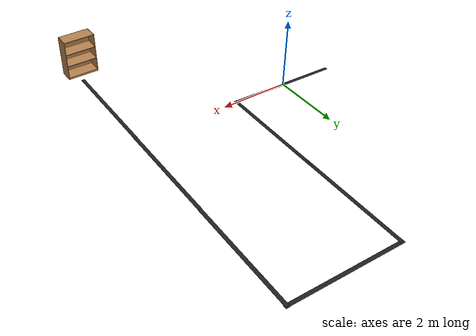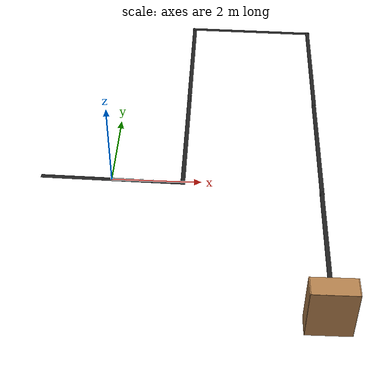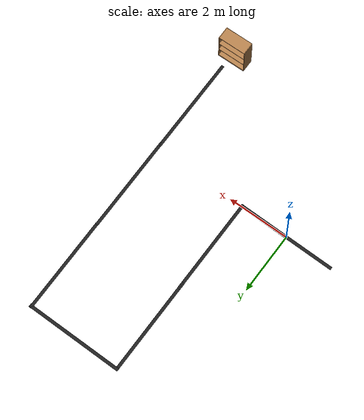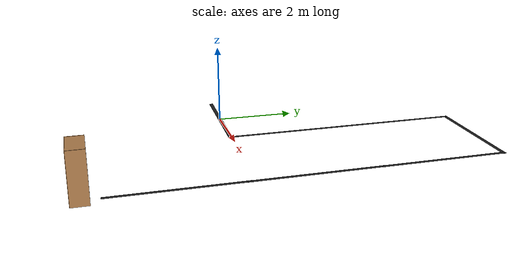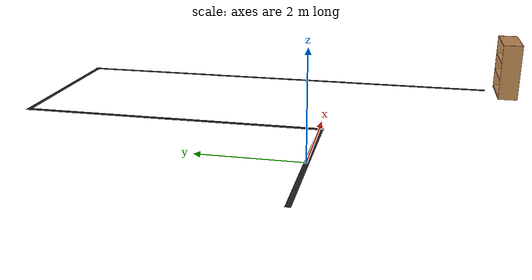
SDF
<sdf version="1.6">
 <world name="default">
  <light name="sun" type="directional">
   <pose>0 0 10 0 -0 0</pose>
   <diffuse>0.8 0.8 0.8 1</diffuse>
   <specular>0.2 0.2 0.2 1</specular>
   <attenuation>
    <range>1000</range>
    <constant>0.9</constant>
    <linear>0.01</linear>
    <quadratic>0.001</quadratic>
   </attenuation>
   <direction>-0.5 0.1 -0.9</direction>
  </light>
  <gravity>0 0 -9.8</gravity>
  <magnetic_field>6e-06 2.3e-05 -4.2e-05</magnetic_field>
  <atmosphere type="adiabatic"/>
  <physics name="default_physics" default="0" type="ode">
   <max_step_size>0.001</max_step_size>
   <real_time_factor>1</real_time_factor>
   <real_time_update_rate>1000</real_time_update_rate>
  </physics>
  <scene><ambient>0.4 0.4 0.4 1</ambient><background>0.7 0.7 0.7 1</background><shadows>1</shadows></scene>
  <spherical_coordinates>
   <surface_model>EARTH_WGS84</surface_model>
   <latitude_deg>0</latitude_deg>
   <longitude_deg>0</longitude_deg>
   <elevation>0</elevation>
   <heading_deg>0</heading_deg>
  </spherical_coordinates>
  <model name="black line">
   <static>1</static>
   <link name="link_ground">
    <collision name="collision">
     <geometry><plane><normal>0 0 1</normal><size>0.1 3.2</size></plane></geometry>
     <surface><friction><ode><mu>100</mu><mu2>50</mu2></ode></friction></surface>
    </collision>
    <visual name="visual_ground">
     <cast_shadows>0</cast_shadows>
     <geometry><plane><normal>0 0 1</normal><size>0.1 3.2</size></plane></geometry>
     <material>
      <script><uri>file://media/materials/scripts/gazebo.material</uri><name>Gazebo/Black</name></script>
     </material>
    </visual>
   </link>
   <pose>0 0 0 0 -0 1.55</pose>
  </model>
  <model name="black line_0">
   <static>1</static>
   <link name="link_ground">
    <collision name="collision">
     <geometry><plane><normal>0 0 1</normal><size>0.1 3.2</size></plane></geometry>
     <surface><friction><ode><mu>100</mu><mu2>50</mu2></ode></friction></surface>
    </collision>
    <visual name="visual_ground">
     <cast_shadows>0</cast_shadows>
     <geometry><plane><normal>0 0 1</normal><size>0.1 3.2</size></plane></geometry>
     <material>
      <script><uri>file://media/materials/scripts/gazebo.material</uri><name>Gazebo/Black</name></script>
     </material>
    </visual>
   </link>
   <pose>1.59123 1.51159 0 0 -0 0</pose>
  </model>
  <model name="black line_1">
   <static>1</static>
   <link name="link_ground">
    <collision name="collision">
     <geometry><plane><normal>0 0 1</normal><size>0.1 3.2</size></plane></geometry>
     <surface><friction><ode><mu>100</mu><mu2>50</mu2></ode></friction></surface>
    </collision>
    <visual name="visual_ground">
     <cast_shadows>0</cast_shadows>
     <geometry><plane><normal>0 0 1</normal><size>0.1 3.2</size></plane></geometry>
     <material>
      <script><uri>file://media/materials/scripts/gazebo.material</uri><name>Gazebo/Black</name></script>
     </material>
    </visual>
   </link>
   <pose>1.58806 4.47746 0 0 -0 0</pose>
  </model>
  <model name="black line_2">
   <static>1</static>
   <link name="link_ground">
    <collision name="collision">
     <geometry><plane><normal>0 0 1</normal><size>0.1 3.2</size></plane></geometry>
     <surface><friction><ode><mu>100</mu><mu2>50</mu2></ode></friction></surface>
    </collision>
    <visual name="visual_ground">
     <cast_shadows>0</cast_shadows>
     <geometry><plane><normal>0 0 1</normal><size>0.1 3.2</size></plane></geometry>
     <material>
      <script><uri>file://media/materials/scripts/gazebo.material</uri><name>Gazebo/Black</name></script>
     </material>
    </visual>
   </link>
   <pose>3.135 6.04301 0 0 -0 1.55</pose>
  </model>
  <model name="black line_3">
   <static>1</static>
   <link name="link_ground">
    <collision name="collision">
     <geometry><plane><normal>0 0 1</normal><size>0.1 3.2</size></plane></geometry>
     <surface><friction><ode><mu>100</mu><mu2>50</mu2></ode></friction></surface>
    </collision>
    <visual name="visual_ground">
     <cast_shadows>0</cast_shadows>
     <geometry><plane><normal>0 0 1</normal><size>0.1 3.2</size></plane></geometry>
     <material>
      <script><uri>file://media/materials/scripts/gazebo.material</uri><name>Gazebo/Black</name></script>
     </material>
    </visual>
   </link>
   <pose>4.67279 4.469 0 0 -0 0</pose>
  </model>
  <model name="black line_4">
   <static>1</static>
   <link name="link_ground">
    <collision name="collision">
     <geometry><plane><normal>0 0 1</normal><size>0.1 3.2</size></plane></geometry>
     <surface><friction><ode><mu>100</mu><mu2>50</mu2></ode></friction></surface>
    </collision>
    <visual name="visual_ground">
     <cast_shadows>0</cast_shadows>
     <geometry><plane><normal>0 0 1</normal><size>0.1 3.2</size></plane></geometry>
     <material>
      <script><uri>file://media/materials/scripts/gazebo.material</uri><name>Gazebo/Black</name></script>
     </material>
    </visual>
   </link>
   <pose>4.66676 1.3253 0 0 -0 0</pose>
  </model>
  <model name="black line_5">
   <static>1</static>
   <link name="link_ground">
    <collision name="collision">
     <geometry><plane><normal>0 0 1</normal><size>0.1 3.2</size></plane></geometry>
     <surface><friction><ode><mu>100</mu><mu2>50</mu2></ode></friction></surface>
    </collision>
    <visual name="visual_ground">
     <cast_shadows>0</cast_shadows>
     <geometry><plane><normal>0 0 1</normal><size>0.1 3.2</size></plane></geometry>
     <material>
      <script><uri>file://media/materials/scripts/gazebo.material</uri><name>Gazebo/Black</name></script>
     </material>
    </visual>
   </link>
   <pose>4.66081 -1.74669 0 0 -0 0</pose>
  </model>
  <model name="bookshelf">
   <static>1</static>
   <link name="link">
    <inertial><mass>1</mass></inertial>
    <collision name="back">
     <pose>0 0.005 0.6 0 -0 0</pose>
     <geometry><box><size>0.9 0.01 1.2</size></box></geometry>
    </collision>
    <visual name="visual1">
     <pose>0 0.005 0.6 0 -0 0</pose>
     <geometry><box><size>0.9 0.01 1.2</size></box></geometry>
     <material>
      <script><uri>file://media/materials/scripts/gazebo.material</uri><name>Gazebo/Wood</name></script>
     </material>
    </visual>
    <collision name="left_side">
     <pose>0.45 -0.195 0.6 0 -0 0</pose>
     <geometry><box><size>0.02 0.4 1.2</size></box></geometry>
    </collision>
    <visual name="visual2">
     <pose>0.45 -0.195 0.6 0 -0 0</pose>
     <geometry><box><size>0.02 0.4 1.2</size></box></geometry>
     <material>
      <script><uri>file://media/materials/scripts/gazebo.material</uri><name>Gazebo/Wood</name></script>
     </material>
    </visual>
    <collision name="right_side">
     <pose>-0.45 -0.195 0.6 0 -0 0</pose>
     <geometry><box><size>0.02 0.4 1.2</size></box></geometry>
    </collision>
    <visual name="visual3">
     <pose>-0.45 -0.195 0.6 0 -0 0</pose>
     <geometry><box><size>0.02 0.4 1.2</size></box></geometry>
     <material>
      <script><uri>file://media/materials/scripts/gazebo.material</uri><name>Gazebo/Wood</name></script>
     </material>
    </visual>
    <collision name="bottom">
     <pose>0 -0.195 0.03 0 -0 0</pose>
     <geometry><box><size>0.88 0.4 0.06</size></box></geometry>
    </collision>
    <visual name="visual4">
     <pose>0 -0.195 0.03 0 -0 0</pose>
     <geometry><box><size>0.88 0.4 0.06</size></box></geometry>
     <material>
      <script><uri>file://media/materials/scripts/gazebo.material</uri><name>Gazebo/Wood</name></script>
     </material>
    </visual>
    <collision name="top">
     <pose>0 -0.195 1.19 0 -0 0</pose>
     <geometry><box><size>0.88 0.4 0.02</size></box></geometry>
    </collision>
    <visual name="visual5">
     <pose>0 -0.195 1.19 0 -0 0</pose>
     <geometry><box><size>0.88 0.4 0.02</size></box></geometry>
     <material>
      <script><uri>file://media/materials/scripts/gazebo.material</uri><name>Gazebo/Wood</name></script>
     </material>
    </visual>
    <collision name="low_shelf">
     <pose>0 -0.195 0.43 0 -0 0</pose>
     <geometry><box><size>0.88 0.4 0.02</size></box></geometry>
    </collision>
    <visual name="visual6">
     <pose>0 -0.195 0.43 0 -0 0</pose>
     <geometry><box><size>0.88 0.4 0.02</size></box></geometry>
     <material>
      <script><uri>file://media/materials/scripts/gazebo.material</uri><name>Gazebo/Wood</name></script>
     </material>
    </visual>
    <collision name="high_shelf">
     <pose>0 -0.195 0.8 0 -0 0</pose>
     <geometry><box><size>0.88 0.4 0.02</size></box></geometry>
    </collision>
    <visual name="visual7">
     <pose>0 -0.195 0.8 0 -0 0</pose>
     <geometry><box><size>0.88 0.4 0.02</size></box></geometry>
     <material>
      <script><uri>file://media/materials/scripts/gazebo.material</uri><name>Gazebo/Wood</name></script>
     </material>
    </visual>
   </link>
   <pose>4.5304 -3.95456 0 0 -0 -3.13319</pose>
  </model>
 </world>
</sdf>
